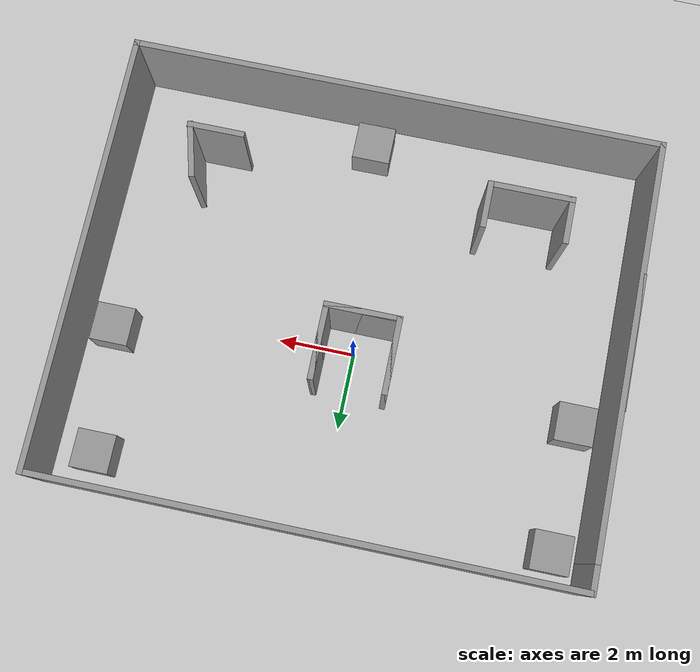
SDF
<sdf version="1.7">
 <world name="default">
  <light name="sun" type="directional">
   <pose>0 0 10 0 -0 0</pose>
   <diffuse>0.8 0.8 0.8 1</diffuse>
   <specular>0.2 0.2 0.2 1</specular>
   <attenuation>
    <range>1000</range>
    <constant>0.9</constant>
    <linear>0.01</linear>
    <quadratic>0.001</quadratic>
   </attenuation>
   <direction>-0.5 0.1 -0.9</direction>
   <spot><inner_angle>0</inner_angle><outer_angle>0</outer_angle><falloff>0</falloff></spot>
  </light>
  <model name="ground_plane">
   <static>1</static>
   <link name="link">
    <collision name="collision">
     <geometry><plane><normal>0 0 1</normal><size>100 100</size></plane></geometry>
     <surface>
      <contact><collide_bitmask>65535</collide_bitmask></contact>
      <friction><ode><mu>100</mu><mu2>50</mu2></ode></friction>
     </surface>
    </collision>
    <visual name="visual">
     <cast_shadows>0</cast_shadows>
     <geometry><plane><normal>0 0 1</normal><size>100 100</size></plane></geometry>
     <material>
      <script><uri>file://media/materials/scripts/gazebo.material</uri><name>Gazebo/Grey</name></script>
     </material>
    </visual>
   </link>
  </model>
  <gravity>0 0 -9.8</gravity>
  <magnetic_field>6e-06 2.3e-05 -4.2e-05</magnetic_field>
  <atmosphere type="adiabatic"/>
  <physics type="ode">
   <max_step_size>0.001</max_step_size>
   <real_time_factor>1</real_time_factor>
   <real_time_update_rate>1000</real_time_update_rate>
  </physics>
  <scene><ambient>0.4 0.4 0.4 1</ambient><background>0.7 0.7 0.7 1</background><shadows>1</shadows></scene>
  <spherical_coordinates>
   <surface_model>EARTH_WGS84</surface_model>
   <latitude_deg>0</latitude_deg>
   <longitude_deg>0</longitude_deg>
   <elevation>0</elevation>
   <heading_deg>0</heading_deg>
  </spherical_coordinates>
  <model name="maze_17">
   <pose>0.198124 -0.840721 0 0 -0 0</pose>
   <link name="Wall_2">
    <collision name="Wall_2_Collision">
     <geometry><box><size>3.5 0.15 2.5</size></box></geometry>
     <pose>0 0 1.25 0 -0 0</pose>
    </collision>
    <visual name="Wall_2_Visual">
     <pose>0 0 1.25 0 -0 0</pose>
     <geometry><box><size>3.5 0.15 2.5</size></box></geometry>
     <material>
      <script><uri>file://media/materials/scripts/gazebo.material</uri><name>Gazebo/Grey</name></script>
      <ambient>1 1 1 1</ambient>
     </material>
     <meta><layer>0</layer></meta>
    </visual>
    <pose>-6.93442 -0.454929 0 0 -0 -1.5708</pose>
   </link>
   <link name="Wall_22">
    <collision name="Wall_22_Collision">
     <geometry><box><size>1.5 0.15 2.5</size></box></geometry>
     <pose>0 0 1.25 0 -0 0</pose>
    </collision>
    <visual name="Wall_22_Visual">
     <pose>0 0 1.25 0 -0 0</pose>
     <geometry><box><size>1.5 0.15 2.5</size></box></geometry>
     <material>
      <script><uri>file://media/materials/scripts/gazebo.material</uri><name>Gazebo/Grey</name></script>
      <ambient>1 1 1 1</ambient>
     </material>
     <meta><layer>0</layer></meta>
    </visual>
    <pose>4.86378 -3.10294 0 0 -0 -1.309</pose>
   </link>
   <link name="Wall_23">
    <collision name="Wall_23_Collision">
     <geometry><box><size>1.5 0.15 2.5</size></box></geometry>
     <pose>0 0 1.25 0 -0 0</pose>
    </collision>
    <visual name="Wall_23_Visual">
     <pose>0 0 1.25 0 -0 0</pose>
     <geometry><box><size>1.5 0.15 2.5</size></box></geometry>
     <material>
      <script><uri>file://media/materials/scripts/gazebo.material</uri><name>Gazebo/Grey</name></script>
      <ambient>1 1 1 1</ambient>
     </material>
     <meta><layer>0</layer></meta>
    </visual>
    <pose>4.36349 -3.75494 0 0 -0 3.14159</pose>
   </link>
   <link name="Wall_37">
    <collision name="Wall_37_Collision">
     <geometry><box><size>1.25 0.15 2.5</size></box></geometry>
     <pose>0 0 1.25 0 -0 0</pose>
    </collision>
    <visual name="Wall_37_Visual">
     <pose>0 0 1.25 0 -0 0</pose>
     <geometry><box><size>1.25 0.15 2.5</size></box></geometry>
     <material>
      <script><uri>file://media/materials/scripts/gazebo.material</uri><name>Gazebo/Grey</name></script>
      <ambient>1 1 1 1</ambient>
     </material>
     <meta><layer>0</layer></meta>
    </visual>
    <pose>-4.89598 -3.20258 0 0 -0 -1.5708</pose>
   </link>
   <link name="Wall_38">
    <collision name="Wall_38_Collision">
     <geometry><box><size>2.25 0.15 2.5</size></box></geometry>
     <pose>0 0 1.25 0 -0 0</pose>
    </collision>
    <visual name="Wall_38_Visual">
     <pose>0 0 1.25 0 -0 0</pose>
     <geometry><box><size>2.25 0.15 2.5</size></box></geometry>
     <material>
      <script><uri>file://media/materials/scripts/gazebo.material</uri><name>Gazebo/Grey</name></script>
      <ambient>1 1 1 1</ambient>
     </material>
     <meta><layer>0</layer></meta>
    </visual>
    <pose>-3.84598 -3.75258 0 0 -0 0</pose>
   </link>
   <link name="Wall_39">
    <collision name="Wall_39_Collision">
     <geometry><box><size>1.25 0.15 2.5</size></box></geometry>
     <pose>0 0 1.25 0 -0 0</pose>
    </collision>
    <visual name="Wall_39_Visual">
     <pose>0 0 1.25 0 -0 0</pose>
     <geometry><box><size>1.25 0.15 2.5</size></box></geometry>
     <material>
      <script><uri>file://media/materials/scripts/gazebo.material</uri><name>Gazebo/Grey</name></script>
      <ambient>1 1 1 1</ambient>
     </material>
     <meta><layer>0</layer></meta>
    </visual>
    <pose>-2.79598 -3.20258 0 0 -0 1.5708</pose>
   </link>
   <link name="Wall_4">
    <collision name="Wall_4_Collision">
     <geometry><box><size>10.75 0.15 2.5</size></box></geometry>
     <pose>0 0 1.25 0 -0 0</pose>
    </collision>
    <visual name="Wall_4_Visual">
     <pose>0 0 1.25 0 -0 0</pose>
     <geometry><box><size>10.75 0.15 2.5</size></box></geometry>
     <material>
      <script><uri>file://media/materials/scripts/gazebo.material</uri><name>Gazebo/Grey</name></script>
      <ambient>1 1 1 1</ambient>
     </material>
     <meta><layer>0</layer></meta>
    </visual>
    <pose>-6.91558 -0.375 0 0 -0 -1.5708</pose>
   </link>
   <link name="Wall_42">
    <collision name="Wall_42_Collision">
     <geometry><box><size>2 0.15 2.5</size></box></geometry>
     <pose>0 0 1.25 0 -0 0</pose>
    </collision>
    <visual name="Wall_42_Visual">
     <pose>0 0 1.25 0 -0 0</pose>
     <geometry><box><size>2 0.15 2.5</size></box></geometry>
     <material>
      <script><uri>file://media/materials/scripts/gazebo.material</uri><name>Gazebo/Grey</name></script>
      <ambient>1 1 1 1</ambient>
     </material>
     <meta><layer>0</layer></meta>
    </visual>
    <pose>-0.300002 0.166844 0 0 -0 0</pose>
   </link>
   <link name="Wall_43">
    <collision name="Wall_43_Collision">
     <geometry><box><size>2 0.15 2.5</size></box></geometry>
     <pose>0 0 1.25 0 -0 0</pose>
    </collision>
    <visual name="Wall_43_Visual">
     <pose>0 0 1.25 0 -0 0</pose>
     <geometry><box><size>2 0.15 2.5</size></box></geometry>
     <material>
      <script><uri>file://media/materials/scripts/gazebo.material</uri><name>Gazebo/Grey</name></script>
      <ambient>1 1 1 1</ambient>
     </material>
     <meta><layer>0</layer></meta>
    </visual>
    <pose>0.624998 1.09184 0 0 -0 1.5708</pose>
   </link>
   <link name="Wall_44">
    <collision name="Wall_44_Collision">
     <geometry><box><size>2 0.15 2.5</size></box></geometry>
     <pose>0 0 1.25 0 -0 0</pose>
    </collision>
    <visual name="Wall_44_Visual">
     <pose>0 0 1.25 0 -0 0</pose>
     <geometry><box><size>2 0.15 2.5</size></box></geometry>
     <material>
      <script><uri>file://media/materials/scripts/gazebo.material</uri><name>Gazebo/Grey</name></script>
      <ambient>1 1 1 1</ambient>
     </material>
     <meta><layer>0</layer></meta>
    </visual>
    <pose>0.624998 1.09184 0 0 -0 -1.5708</pose>
   </link>
   <link name="Wall_45">
    <collision name="Wall_45_Collision">
     <geometry><box><size>2 0.15 2.5</size></box></geometry>
     <pose>0 0 1.25 0 -0 0</pose>
    </collision>
    <visual name="Wall_45_Visual">
     <pose>0 0 1.25 0 -0 0</pose>
     <geometry><box><size>2 0.15 2.5</size></box></geometry>
     <material>
      <script><uri>file://media/materials/scripts/gazebo.material</uri><name>Gazebo/Grey</name></script>
      <ambient>1 1 1 1</ambient>
     </material>
     <meta><layer>0</layer></meta>
    </visual>
    <pose>-0.300002 0.166844 0 0 -0 3.14159</pose>
   </link>
   <link name="Wall_46">
    <collision name="Wall_46_Collision">
     <geometry><box><size>2 0.15 2.5</size></box></geometry>
     <pose>0 0 1.25 0 -0 0</pose>
    </collision>
    <visual name="Wall_46_Visual">
     <pose>0 0 1.25 0 -0 0</pose>
     <geometry><box><size>2 0.15 2.5</size></box></geometry>
     <material>
      <script><uri>file://media/materials/scripts/gazebo.material</uri><name>Gazebo/Grey</name></script>
      <ambient>1 1 1 1</ambient>
     </material>
     <meta><layer>0</layer></meta>
    </visual>
    <pose>-1.225 1.09184 0 0 -0 1.5708</pose>
   </link>
   <link name="Wall_47">
    <collision name="Wall_47_Collision">
     <geometry><box><size>2 0.15 2.5</size></box></geometry>
     <pose>0 0 1.25 0 -0 0</pose>
    </collision>
    <visual name="Wall_47_Visual">
     <pose>0 0 1.25 0 -0 0</pose>
     <geometry><box><size>2 0.15 2.5</size></box></geometry>
     <material>
      <script><uri>file://media/materials/scripts/gazebo.material</uri><name>Gazebo/Grey</name></script>
      <ambient>1 1 1 1</ambient>
     </material>
     <meta><layer>0</layer></meta>
    </visual>
    <pose>-1.225 1.09184 0 0 -0 -1.5708</pose>
   </link>
   <link name="Wall_5">
    <collision name="Wall_5_Collision">
     <geometry><box><size>14 0.15 2.5</size></box></geometry>
     <pose>0 0 1.25 0 -0 0</pose>
    </collision>
    <visual name="Wall_5_Visual">
     <pose>0 0 1.25 0 -0 0</pose>
     <geometry><box><size>14 0.15 2.5</size></box></geometry>
     <material>
      <script><uri>file://media/materials/scripts/gazebo.material</uri><name>Gazebo/Grey</name></script>
      <ambient>1 1 1 1</ambient>
     </material>
     <meta><layer>0</layer></meta>
    </visual>
    <pose>0.009424 -5.675 0 0 -0 0</pose>
   </link>
   <link name="Wall_6">
    <collision name="Wall_6_Collision">
     <geometry><box><size>11.5 0.15 2.5</size></box></geometry>
     <pose>0 0 1.25 0 -0 0</pose>
    </collision>
    <visual name="Wall_6_Visual">
     <pose>0 0 1.25 0 -0 0</pose>
     <geometry><box><size>11.5 0.15 2.5</size></box></geometry>
     <material>
      <script><uri>file://media/materials/scripts/gazebo.material</uri><name>Gazebo/Grey</name></script>
      <ambient>1 1 1 1</ambient>
     </material>
     <meta><layer>0</layer></meta>
    </visual>
    <pose>6.93442 0 0 0 -0 1.5708</pose>
   </link>
   <link name="Wall_7">
    <collision name="Wall_7_Collision">
     <geometry><box><size>14 0.15 2.5</size></box></geometry>
     <pose>0 0 1.25 0 -0 0</pose>
    </collision>
    <visual name="Wall_7_Visual">
     <pose>0 0 1.25 0 -0 0</pose>
     <geometry><box><size>14 0.15 2.5</size></box></geometry>
     <material>
      <script><uri>file://media/materials/scripts/gazebo.material</uri><name>Gazebo/Grey</name></script>
      <ambient>1 1 1 1</ambient>
     </material>
     <meta><layer>0</layer></meta>
    </visual>
    <pose>0.009424 5.675 0 0 -0 3.14159</pose>
   </link>
   <link name="Wall_8">
    <collision name="Wall_8_Collision">
     <geometry><box><size>1 0.15 2.5</size></box></geometry>
     <pose>0 0 1.25 0 -0 0</pose>
    </collision>
    <visual name="Wall_8_Visual">
     <pose>0 0 1.25 0 -0 0</pose>
     <geometry><box><size>1 0.15 2.5</size></box></geometry>
     <material>
      <script><uri>file://media/materials/scripts/gazebo.material</uri><name>Gazebo/Grey</name></script>
      <ambient>1 1 1 1</ambient>
     </material>
     <meta><layer>0</layer></meta>
    </visual>
    <pose>-6.91558 5.25 0 0 -0 -1.5708</pose>
   </link>
   <static>1</static>
  </model>
  <model name="unit_box">
   <pose>-5.87704 4.03665 0.5 0 -0 0</pose>
   <link name="link">
    <inertial>
     <mass>1</mass>
     <inertia>
      <ixx>0.166667</ixx>
      <ixy>0</ixy>
      <ixz>0</ixz>
      <iyy>0.166667</iyy>
      <iyz>0</iyz>
      <izz>0.166667</izz>
     </inertia>
    </inertial>
    <collision name="collision"><geometry><box><size>1 1 1</size></box></geometry></collision>
    <visual name="visual">
     <geometry><box><size>1 1 1</size></box></geometry>
     <material>
      <script><name>Gazebo/Grey</name><uri>file://media/materials/scripts/gazebo.material</uri></script>
     </material>
    </visual>
   </link>
  </model>
  <model name="unit_box_0">
   <pose>5.9196 3.92816 0.5 0 -0 0</pose>
   <link name="link">
    <inertial>
     <mass>1</mass>
     <inertia>
      <ixx>0.166667</ixx>
      <ixy>0</ixy>
      <ixz>0</ixz>
      <iyy>0.166667</iyy>
      <iyz>0</iyz>
      <izz>0.166667</izz>
     </inertia>
    </inertial>
    <collision name="collision"><geometry><box><size>1 1 1</size></box></geometry></collision>
    <visual name="visual">
     <geometry><box><size>1 1 1</size></box></geometry>
     <material>
      <script><name>Gazebo/Grey</name><uri>file://media/materials/scripts/gazebo.material</uri></script>
     </material>
    </visual>
   </link>
  </model>
  <model name="unit_box_1">
   <pose>-5.94752 0.756714 0.5 0 -0 0</pose>
   <link name="link">
    <inertial>
     <mass>1</mass>
     <inertia>
      <ixx>0.166667</ixx>
      <ixy>0</ixy>
      <ixz>0</ixz>
      <iyy>0.166667</iyy>
      <iyz>0</iyz>
      <izz>0.166667</izz>
     </inertia>
    </inertial>
    <collision name="collision"><geometry><box><size>1 1 1</size></box></geometry></collision>
    <visual name="visual">
     <geometry><box><size>1 1 1</size></box></geometry>
     <material>
      <script><name>Gazebo/Grey</name><uri>file://media/materials/scripts/gazebo.material</uri></script>
     </material>
    </visual>
   </link>
  </model>
  <model name="unit_box_2">
   <pose>6.25977 0.632266 0.5 0 -0 0</pose>
   <link name="link">
    <inertial>
     <mass>1</mass>
     <inertia>
      <ixx>0.166667</ixx>
      <ixy>0</ixy>
      <ixz>0</ixz>
      <iyy>0.166667</iyy>
      <iyz>0</iyz>
      <izz>0.166667</izz>
     </inertia>
    </inertial>
    <collision name="collision"><geometry><box><size>1 1 1</size></box></geometry></collision>
    <visual name="visual">
     <geometry><box><size>1 1 1</size></box></geometry>
     <material>
      <script><name>Gazebo/Grey</name><uri>file://media/materials/scripts/gazebo.material</uri></script>
     </material>
    </visual>
   </link>
  </model>
  <model name="unit_box_3">
   <pose>0.607409 -5.64016 0.5 0 -0 0</pose>
   <link name="link">
    <inertial>
     <mass>1</mass>
     <inertia>
      <ixx>0.166667</ixx>
      <ixy>0</ixy>
      <ixz>0</ixz>
      <iyy>0.166667</iyy>
      <iyz>0</iyz>
      <izz>0.166667</izz>
     </inertia>
    </inertial>
    <collision name="collision"><geometry><box><size>1 1 1</size></box></geometry></collision>
    <visual name="visual">
     <geometry><box><size>1 1 1</size></box></geometry>
     <material>
      <script><name>Gazebo/Grey</name><uri>file://media/materials/scripts/gazebo.material</uri></script>
     </material>
    </visual>
   </link>
  </model>
 </world>
</sdf>
